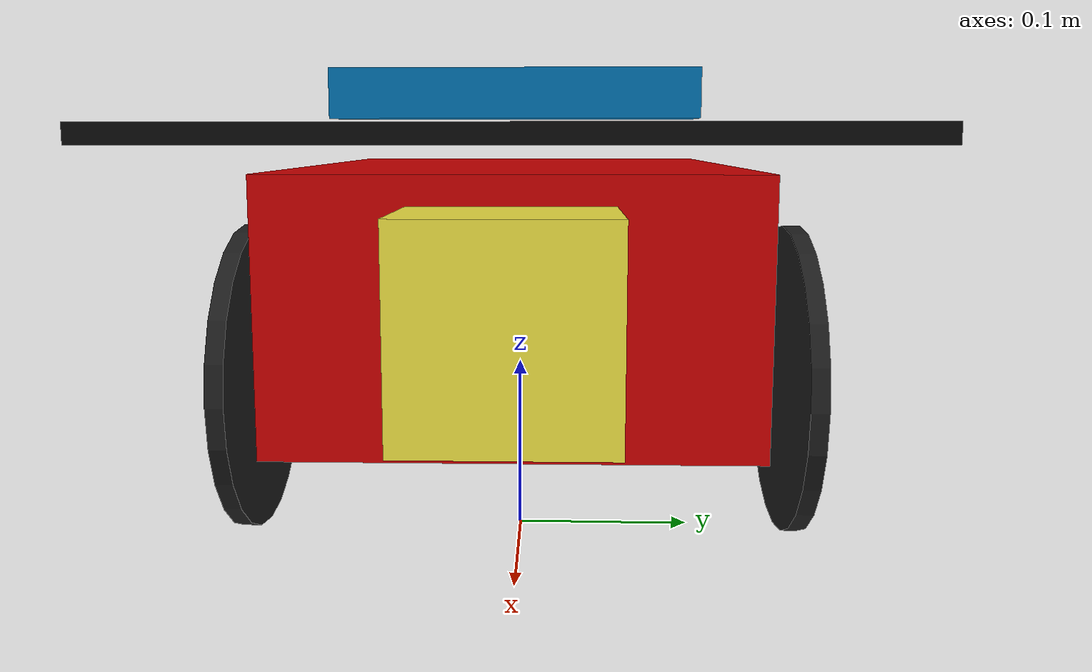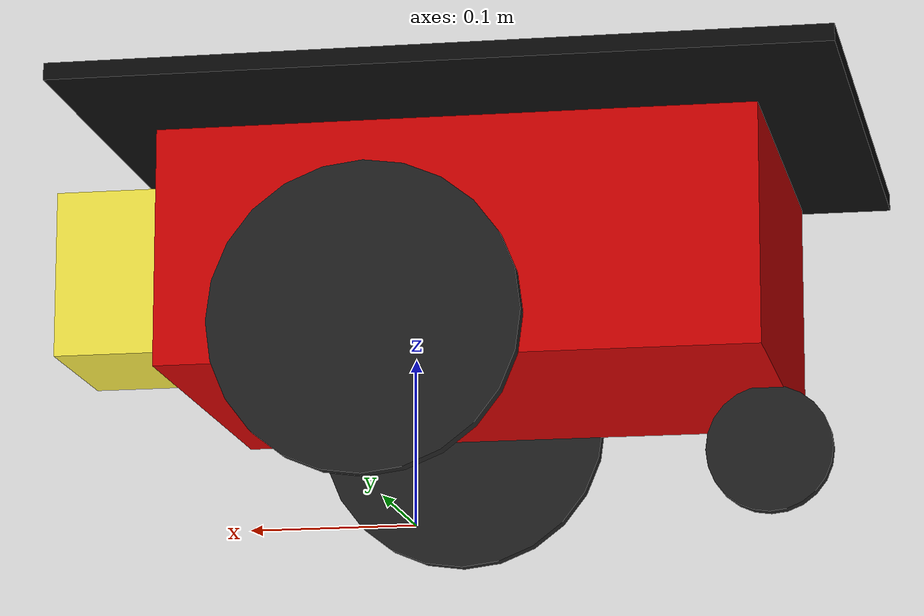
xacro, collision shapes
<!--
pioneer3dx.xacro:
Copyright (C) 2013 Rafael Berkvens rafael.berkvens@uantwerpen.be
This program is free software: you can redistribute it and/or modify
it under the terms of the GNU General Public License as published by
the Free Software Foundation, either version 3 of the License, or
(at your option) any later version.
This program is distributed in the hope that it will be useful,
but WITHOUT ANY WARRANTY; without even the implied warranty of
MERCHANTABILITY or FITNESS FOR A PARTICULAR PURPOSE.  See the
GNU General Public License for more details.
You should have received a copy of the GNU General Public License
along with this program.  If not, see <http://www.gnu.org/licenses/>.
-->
<?xml version="1.0"?>
<robot xmlns:xacro="http://wiki.ros.org/xacro" name="p3dx" >

	<!-- import xacro files -->
	<xacro:include filename="$(find p3dx_description)/urdf/pioneer3dx.xacro" />
	<xacro:include filename="$(find p3dx_description)/urdf/sensors/asus_camera.urdf.xacro" />

	<!-- instantiate imported macros with specific values, i.e. camera calibration -->
	<xacro:asus_camera name="camera" calib_x="0.00" calib_y="0.0" calib_z="0.0" calib_roll="-0.00" calib_pitch="0.00" calib_yaw="0.00" />

	<!-- connect camera with the top_plate -->
	<joint name="neck_link_to_head_camera" type="fixed" >
		<parent link="top_plate" />
		<child link="camera_model_link" />
		<origin xyz="0.12 0 0.02" rpy="0 0 0" />
	</joint>

</robot>

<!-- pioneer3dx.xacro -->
<robot name="pioneer3dx" xmlns:xacro="http://wiki.ros.org/xacro">

<!-- import the pioneer 3dx's wheels -->
<xacro:include filename="$(find p3dx_description)/urdf/pioneer3dx_wheel.xacro" />

<!-- import all gazebo-customization elements, including gazebo colors -->
<xacro:include filename="$(find p3dx_description)/urdf/pioneer3dx.gazebo" />

<!-- import materials to add color to the pioneer in rviz -->
<xacro:include filename="$(find p3dx_description)/urdf/materials.xacro" />

<!-- chassis -->
<link name="base_link">
    <visual>
        <origin xyz="-0.045 0 0.148" rpy="0 0 0" />
        <geometry name="pioneer_geom">
            <mesh filename="package://p3dx_description/meshes/chassis.stl" />
        </geometry>
        <material name="ChassisRed"/>
    </visual>

    <collision>
        <origin xyz="-0.045 0 0.145" rpy="0 0 0" />
        <geometry>
            <box size="0.35 0.25 0.14" />
        </geometry>
    </collision>

</link>
<link name="base_link_dummy">
    <inertial>
        <mass value="3.5" />
        <origin xyz="-0.05 0 0" />
        <inertia ixx="1" ixy="0" ixz="0" iyy="1" iyz="0" izz="1" />
    </inertial>
</link>

<joint name="base_link_inertial_joint" type="fixed">
    <origin xyz="0 0 0" rpy="0 0 0" />
    <parent link="base_link" />
    <child link="base_link_dummy" />
</joint>

<!-- top_plate -->
<link name="top_plate">
    <visual>
        <origin xyz="0 0 0" rpy="0 0 0" />
        <geometry name="top_geom">
            <mesh filename="package://p3dx_description/meshes/top.stl" />
        </geometry>
        <material name="TopBlack"/>
    </visual>

    <collision>
        <origin xyz="0.0 0 0" rpy="0 0 0" />
        <geometry name="pioneer_geom">
            <box size="0.45 0.38 0.01" />
        </geometry>
    </collision>

    <inertial>
        <mass value="0.01" />
        <origin xyz="0 0 0" />
        <inertia ixx="1" ixy="0" ixz="0" iyy="1" iyz="0" izz="1" />
    </inertial>
</link>

<joint name="base_top_joint" type="fixed">
    <origin xyz="-0.045 0 0.234" rpy="0 0 0" />
    <parent link="base_link" />
    <child link="top_plate" />
</joint>

<!-- swivel -->
<link name="swivel">
    <visual>
        <origin xyz="0 0 0" rpy="0 0 0" />
        <geometry name="pioneer_geom">
            <mesh filename="package://p3dx_description/meshes/swivel.stl" />
        </geometry>
        <material name="SwivelGrey"/>
    </visual>

    <collision>
        <origin xyz="0 0 0" rpy="0 0 0" />
        <geometry>
            <box size="0.0001 0.0001 0.0001" />
        </geometry>
    </collision>

    <inertial>
        <mass value="0.1" />
        <origin xyz="0 0 0" />
        <inertia ixx="0.01" ixy="0" ixz="0" iyy="0.01" iyz="0" izz="0.01" />
    </inertial>
</link>

<joint name="base_swivel_joint" type="continuous">
    <origin xyz="-0.185 0 0.055" rpy="0 0 0" />
    <axis xyz="0 0 1" />
    <anchor xyz="0 0 0" />
    <limit effort="100" velocity="100" k_velocity="0" />
    <joint_properties damping="0.0" friction="0.0" />
    <parent link="base_link" />
    <child link="swivel" />
</joint>

<!-- center_hubcap -->
<link name="center_hubcap">
    <visual>
        <origin xyz="0 0 0" rpy="0 0 0" />
        <geometry name="pioneer_geom">
            <mesh filename="package://p3dx_description/meshes/center_hubcap.stl" />
        </geometry>
        <material name="HubcapYellow"/>
    </visual>

    <collision>
        <origin xyz="0 0 0" rpy="0 0 0" />
        <geometry>
            <box size="0.0001 0.0001 0.0001" />
        </geometry>
    </collision>

    <inertial>
        <mass value="0.01" />
        <origin xyz="0 0 0" />
        <inertia ixx="0.012411765597" ixy="-0.000711733678" ixz="0.00050272983"
            iyy="0.015218160428" iyz="-0.000004273467" izz="0.011763977943" />
    </inertial>
</link>

<joint name="swivel_hubcap_joint" type="continuous">
    <origin xyz="-0.026 0 -0.016" rpy="0 0 0" />
    <axis xyz="0 1 0" />
    <anchor xyz="0 0 0" />
    <limit effort="100" velocity="100" k_velocity="0" />
    <joint_properties damping="0.0" friction="0.0" />
    <parent link="swivel" />
    <child link="center_wheel" />
</joint>

<!-- center_wheel -->
<link name="center_wheel">
    <visual>
        <origin xyz="0 0 0" rpy="0 0 0" />
        <geometry name="pioneer_geom">
            <mesh filename="package://p3dx_description/meshes/center_wheel.stl" />
        </geometry>
        <material name="WheelBlack"/>
    </visual>

    <collision>
        <origin xyz="0 0 0" rpy="${-3.1415927/2.0} 0 0" />
        <geometry>
            <cylinder radius="0.0375" length="0.01" />
        </geometry>
    </collision>

    <inertial>
        <mass value="0.1" />
        <origin xyz="0 0 0" />
        <inertia ixx="0.012411765597" ixy="-0.000711733678" ixz="0.00050272983"
            iyy="0.015218160428" iyz="-0.000004273467" izz="0.011763977943" />
    </inertial>
</link>

<joint name="center_wheel_joint" type="fixed">
    <origin xyz="0 0 0" rpy="0 0 0"/>
    <parent link="center_wheel"/>
    <child link="center_hubcap"/>
</joint>

<xacro:p3dx_wheel suffix="left" parent="base_link" reflect="1"/>
<xacro:p3dx_wheel suffix="right" parent="base_link" reflect="-1"/>

<!-- front_sonar -->
<link name="front_sonar">
    <visual>
        <origin rpy="0 0 0" xyz="0 0 0" />
        <geometry name="pioneer_geom">
            <mesh filename="package://p3dx_description/meshes/front_sonar.stl" />
        </geometry>
        <material name="SonarYellow"/>
    </visual>

    <collision>
        <origin rpy="0 0 0" xyz="0 0 0" />
        <geometry>
            <box size="0.0001 0.0001 0.0001" />
        </geometry>
    </collision>

    <inertial>
        <mass value="0.0001" />
        <origin xyz="0 0 0" />
        <inertia ixx="1" ixy="0" ixz="0" iyy="1" iyz="0" izz="1" />
    </inertial>
</link>

<joint name="base_front_joint" type="fixed">
    <origin rpy="0 0 0" xyz="0.109 0 0.209" />
    <parent link="base_link" />
    <child link="front_sonar" />
</joint>

<!-- lms100 laser -->
<link name="lms100">
    <inertial>
        <mass value="1e-5" />
        <origin xyz="0 0 0" rpy="0 0 0" />
        <inertia ixx="1e-6" ixy="0" ixz="0" iyy="1e-6" iyz="0" izz="1e-6" />
    </inertial>

    <visual>
        <origin xyz="0 0 0" rpy="0 0 0" />
        <geometry>
            <mesh filename="package://p3dx_description/meshes/lms100.dae" />
        </geometry>
    </visual>

    <collision>
        <origin xyz="0 0 0" rpy="0 0 0" />
        <geometry>
            <box size="0.1 0.1 0.1" />
        </geometry>
    </collision>
</link>

<joint name="lms100_joint" type="fixed">
    <axis xyz="0 1 0" />
    <origin xyz="0.16 0 0.15" rpy="0 0 0" />
    <parent link="base_link" />
    <child link="lms100" />
</joint>

</robot>

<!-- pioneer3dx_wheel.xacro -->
<robot xmlns:xacro="http://wiki.ros.org/xacro">

<!-- macro to generate pioneer wheels (right/left hubcap + wheel) -->
<xacro:macro name="p3dx_wheel" params="suffix parent reflect">

    <!-- wheel -->
    <link name="p3dx_${suffix}_wheel">
        <visual>
            <origin xyz="0 0 0" rpy="0 0 0" />
            <geometry name="pioneer_geom">
                <mesh filename="package://p3dx_description/meshes/${suffix}_wheel.stl" />
            </geometry>
            <material name="WheelBlack"/>
        </visual>

        <collision>
            <origin xyz="0 0 0" rpy="${-3.1415927/2} 0 0" />
            <geometry>
                <cylinder radius="0.09" length="0.01" />
            </geometry>
        </collision>

        <inertial>
            <mass value="0.5" />
            <origin xyz="0 0 0" />
            <inertia ixx="0.012411765597" ixy="0" ixz="0" iyy="0.015218160428"
                iyz="0" izz="0.011763977943" />
        </inertial>
    </link>

    <joint name="base_${suffix}_hubcap_joint" type="fixed">
        <origin xyz="0 0 0" rpy="0 0 0" />
        <parent link="p3dx_${suffix}_wheel" />
        <child link="p3dx_${suffix}_hubcap" />
    </joint>

    <!-- hubcap -->
    <link name="p3dx_${suffix}_hubcap">
        <inertial>
            <mass value="0.01" />
            <origin xyz="0 0 0" />
            <inertia ixx="0.012411765597" ixy="0" ixz="0" iyy="0.015218160428"
                iyz="0" izz="0.011763977943" />
        </inertial>

        <visual>
            <origin xyz="0 0 0" rpy="0 0 0" />
            <geometry name="pioneer_geom">
                <mesh filename="package://p3dx_description/meshes/${suffix}_hubcap.stl" />
            </geometry>
            <material name="HubcapYellow"/>
        </visual>

        <collision>
            <origin xyz="0 0 0" rpy="0 0 0" />
            <geometry>
                <box size="0.0001 0.0001 0.0001" />
            </geometry>
        </collision>
    </link>

    <joint name="base_${suffix}_wheel_joint" type="continuous">
        <axis xyz="0 1 0" />
        <anchor xyz="0 0 0" />
        <limit effort="100" velocity="100" />
        <joint_properties damping="0.0" friction="0.0" />
        <origin xyz="0 ${reflect*0.158} 0.091" rpy="0 0 0" />
        <parent link="base_link" />
        <child link="p3dx_${suffix}_wheel" />
    </joint>

    <!-- gazebo elements -->
    <transmission name="${parent}_${suffix}_wheel_trans">
        <type>transmission_interface/SimpleTransmission</type>
        <joint name="base_${suffix}_wheel_joint" >
            <hardwareInterface>hardware_interface/EffortJointInterface</hardwareInterface>
        </joint>
        <actuator name="base_${suffix}_wheel_motor">
            <mechanicalReduction>${reflect * 624/35 * 80/19}</mechanicalReduction>
        </actuator>
    </transmission>

    <!-- gazebo colors and properties -->
    <gazebo reference="p3dx_${suffix}_hubcap">
        <material>Gazebo/Yellow</material>
    </gazebo>

    <gazebo reference="p3dx_${suffix}_wheel">
        <material>Gazebo/Black</material>
        <mu1>0.5</mu1>
        <mu2>50.0</mu2>
        <kp>100000000.0</kp>
        <kd>1.0</kd>
    </gazebo>
</xacro:macro>

</robot>

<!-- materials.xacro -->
<!-- NOTE: this materials are for rviz visualization, for gazebo visualization check: pioneer3dx.gazebo -->
<robot name="pioneer3dx" xmlns:xacro="http://wiki.ros.org/xacro">

    <material name="ChassisRed">
        <color rgba="0.8 0.0 0.0 1.0"/>
    </material>

    <material name="SonarYellow">
        <color rgba="0.715 0.583 0.210 1.0"/>
    </material>

    <material name="WheelBlack">
        <color rgba="0.117 0.117 0.117 1.0"/>
    </material>

    <material name="HubcapYellow">
        <color rgba="1.0 0.811 0.151 1.0"/>
    </material>

    <material name="TopBlack">
        <color rgba="0.038 0.038 0.038 1.0"/>
    </material>

    <material name="SwivelGrey">
        <color rgba="0.5 0.5 0.5 1" />
    </material>

</robot>

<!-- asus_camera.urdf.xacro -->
<robot xmlns:xacro="http://wiki.ros.org/xacro">
  <!-- file taken from: https://github.com/tu-darmstadt-ros-pkg/hector_models, adapted-->

  <xacro:property name="M_PI" value="3.1415926535897931"/>
  <xacro:property name="ASUS_WIDTH" value="0.035"/>
  <xacro:property name="ASUS_LENGTH" value="0.185"/>
  <xacro:property name="ASUS_HEIGHT" value="0.025"/>
  <xacro:property name="ASUS_BASE_TO_SERVO_AXIS_DISTANCE" value="0.008"/>
  <xacro:property name="RGB_OFFSET" value="0.022"/> <!-- offset between camera center and RGB lens -->
  <xacro:property name="INFRARED_SENSOR_OFFSET" value="0.049"/> <!-- offset between camera center and infrared sensor lens -->

  <!--
    The asus_camera_model macro only adds the model, it does not also add
    the openni gazebo plugin. See the 'asus_camera' macro below for that
  -->
  <xacro:macro name="asus_camera_model" params="name calib_x calib_y calib_z calib_roll calib_pitch calib_yaw">

    <link name="${name}_model_link">
      <inertial>
        <mass value="0.200"/>
        <origin xyz="0 0 0" rpy="0 0 0"/>
        <inertia ixx="5.8083e-4" ixy="0" ixz="0" iyy="3.0833e-5" iyz="0" izz="5.9083e-4"/>
      </inertial>
      <visual>
        <origin xyz="${ASUS_WIDTH / 2.0} 0 ${ASUS_HEIGHT / 2.0 + ASUS_BASE_TO_SERVO_AXIS_DISTANCE}" rpy="0 0 0"/>
        <geometry>
          <!--box size="0.035 0.185 0.025"/-->
          <mesh filename="package://p3dx_description/meshes/sensors/asus_camera_simple.dae"/>
        </geometry>
      </visual>
      <collision>
        <origin xyz="0 0 0" rpy="0 0 0"/>
        <geometry>
          <box size="${ASUS_WIDTH} ${ASUS_LENGTH} ${ASUS_HEIGHT}"/>
        </geometry>
      </collision>
    </link>

    <link name="${name}_link"/>

    <joint name="model_to_${name}_link" type="fixed">
      <origin xyz="${ASUS_WIDTH / 2.0 + calib_x} ${calib_y} ${ASUS_HEIGHT / 2.0 + ASUS_BASE_TO_SERVO_AXIS_DISTANCE + calib_z}"
              rpy="${calib_roll} ${calib_pitch} ${calib_yaw}"/>
      <parent link="${name}_model_link"/>
      <child link="${name}_link"/>
    </joint>

    <joint name="${name}_depth_joint" type="fixed">
      <origin xyz="0.0 ${INFRARED_SENSOR_OFFSET} 0.0" rpy="0 0 0"/>
      <parent link="${name}_link"/>
      <child link="${name}_depth_frame"/>
    </joint>

    <link name="${name}_depth_frame"/>

    <joint name="${name}_depth_optical_joint" type="fixed">
      <origin xyz="0 0 0" rpy="${-M_PI/2} 0.0 ${-M_PI/2}"/>
      <parent link="${name}_depth_frame"/>
      <child link="${name}_depth_optical_frame"/>
    </joint>

    <link name="${name}_depth_optical_frame"/>

    <joint name="${name}_rgb_joint" type="fixed">
      <origin xyz="0.0 ${RGB_OFFSET} 0.0" rpy="0 0 0"/>
      <parent link="${name}_link"/>
      <child link="${name}_rgb_frame"/>
    </joint>

    <link name="${name}_rgb_frame"/>

    <joint name="${name}_rgb_optical_joint" type="fixed">
      <origin xyz="0 0 0" rpy="${-M_PI/2} 0.0 ${-M_PI/2}"/>
      <parent link="${name}_rgb_frame"/>
      <child link="${name}_rgb_optical_frame"/>
    </joint>

    <link name="${name}_rgb_optical_frame"/>
  </xacro:macro>

  <!-- ASUS depth camera -->
  <xacro:macro name="asus_camera" params="name calib_x calib_y calib_z calib_roll calib_pitch calib_yaw" >
  <xacro:asus_camera_model name="${name}" calib_x="${calib_x}" calib_y="${calib_y}" calib_z="${calib_z}" calib_roll="${calib_roll}" calib_pitch="${calib_pitch}" calib_yaw="${calib_yaw}"/>

  <!-- ASUS Xtion PRO camera for simulation -->
  <gazebo reference="${name}_depth_frame">
    <sensor type="depth" name="${name}">
      <always_on>true</always_on>
      <update_rate>20.0</update_rate>
      <camera>
      <horizontal_fov>${60.0 * M_PI/180.0}</horizontal_fov>
      <image>
          <format>B8G8R8</format>
          <width>640</width>
          <height>480</height>
      </image>
      <clip>
          <near>0.05</near>
          <far>8.0</far>
      </clip>
      </camera>
      <plugin name="${name}_camera_controller" filename="libgazebo_ros_openni_kinect.so">
        <cameraName>${name}</cameraName>
        <alwaysOn>true</alwaysOn>
        <updateRate>10</updateRate>
        <imageTopicName>rgb/image_raw</imageTopicName>
        <depthImageTopicName>depth/image_raw</depthImageTopicName>
        <pointCloudTopicName>depth_registered/points</pointCloudTopicName>
        <cameraInfoTopicName>rgb/camera_info</cameraInfoTopicName>
        <depthImageCameraInfoTopicName>depth/camera_info</depthImageCameraInfoTopicName>
        <frameName>${name}_depth_optical_frame</frameName>
        <baseline>0.1</baseline>
        <distortion_k1>0.0</distortion_k1>
        <distortion_k2>0.0</distortion_k2>
        <distortion_k3>0.0</distortion_k3>
        <distortion_t1>0.0</distortion_t1>
        <distortion_t2>0.0</distortion_t2>
        <pointCloudCutoff>0.4</pointCloudCutoff>
      </plugin>
    </sensor>
  </gazebo>

  </xacro:macro>

</robot>
